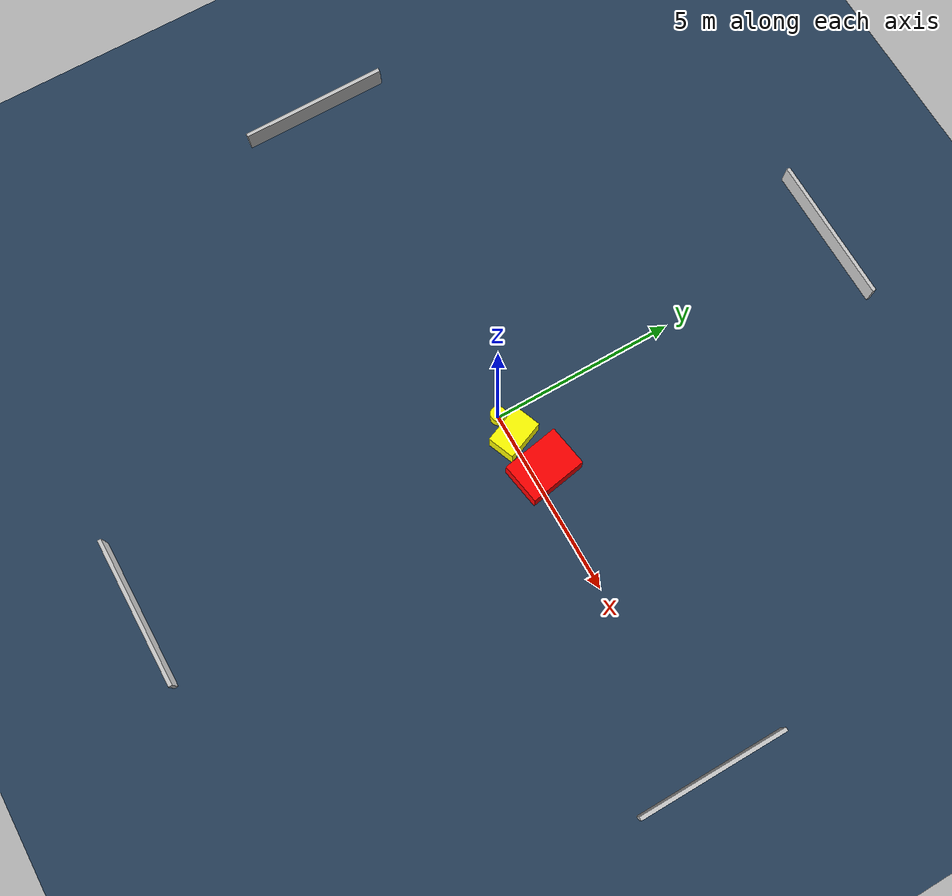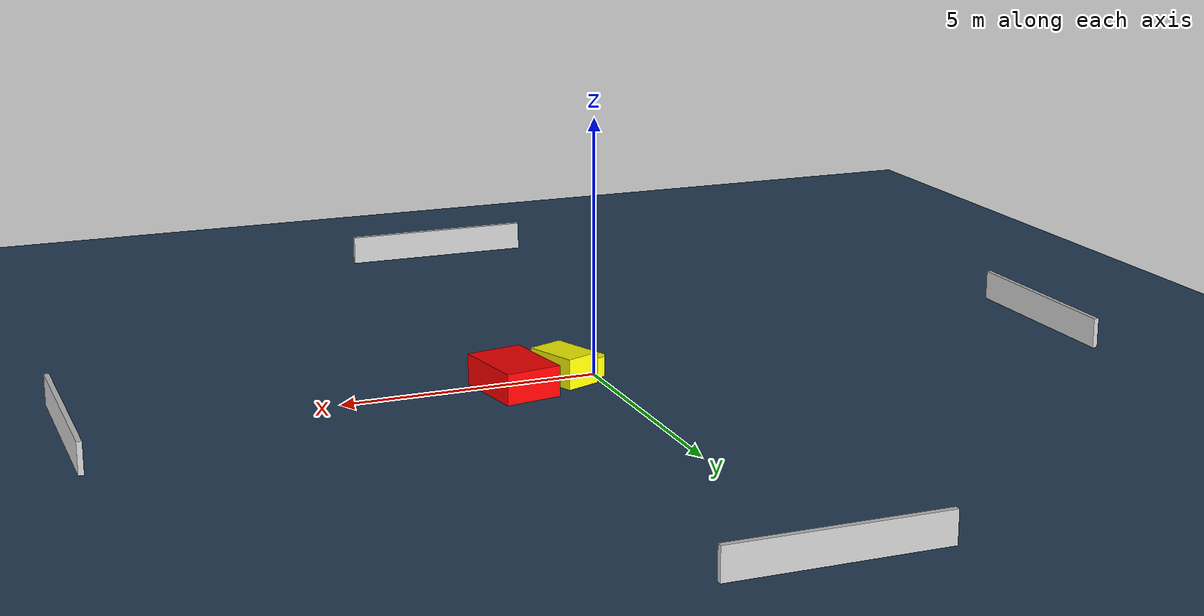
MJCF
<?xml version="1.0" ?>
<mujoco model="generated_environment">
  <option timestep="0.01" integrator="RK4" cone="elliptic"/>
  <default>
    <geom density="1"/>
  </default>
  <asset>
    <texture builtin="gradient" height="3072" name="skybox" rgb1="0.3 0.5 0.7" rgb2="0 0 0" type="skybox" width="512"/>
    <texture builtin="checker" height="300" name="groundplane" rgb1="0.2 0.3 0.4" rgb2="0.1 0.2 0.3" type="2d" width="300"/>
    <material name="groundplane" reflectance="0.2" texrepeat="5 5" texture="groundplane"/>
  </asset>
  <worldbody>
    <light dir="0 0 -1" directional="true" pos="0 0 1.5"/>
    <geom condim="3" friction="0.5 0.005 0.001" material="groundplane" name="floor" pos="0 0 0" size="0 0 0.05" type="plane"/>
    <body name="walls">
      <geom name="wall_1" condim="4" pos="-10.0 0.0 0.3" rgba="0.800000011920929 0.800000011920929 0.800000011920929 1.0" size="0.05 2.0 0.3" type="box"/>
      <geom name="wall_2" condim="4" pos="10.0 0.0 0.3" rgba="0.800000011920929 0.800000011920929 0.800000011920929 1.0" size="0.05 2.0 0.3" type="box"/>
      <geom name="wall_3" condim="4" pos="0.0 -10.0 0.3" rgba="0.800000011920929 0.800000011920929 0.800000011920929 1.0" size="2.0 0.05 0.3" type="box"/>
      <geom name="wall_4" condim="4" pos="0.0 10.0 0.3" rgba="0.800000011920929 0.800000011920929 0.800000011920929 1.0" size="2.0 0.05 0.3" type="box"/>
    </body>
    <body name="robot">
      <joint name="joint_x" type="slide" pos="0 0 0" axis="1 0 0"/>
      <joint name="joint_y" type="slide" pos="0 0 0" axis="0 1 0"/>
      <geom name="robot" type="cylinder" pos="0.0 0.0 0.2" size="0.2 0.2 0.0" mass="5.0" friction="1.0 0.005 0.0001" condim="4" rgba="1.0 1.0 0.0 1.0"/>
    </body>
    <body name="obstacle_1_movable">
      <geom name="obstacle_1_movable" condim="4" pos="0.646155274063148 0.08902059612138884 0.3" euler="0 0 111.88857733867377" friction="0.0 0.005 0.001" rgba="1.0 1.0 0.0 1.0" size="0.5409028179540538 0.3664968125921585 0.3" type="box" mass="0.1"/>
      <joint type="free"/>
    </body>
    <body name="obstacle_2_static">
      <geom name="obstacle_2_static" condim="4" pos="1.7500954443295351 0.31229609380342543 0.3" euler="0 0 279.67265456046533" friction="0.0 0.005 0.001" rgba="1.0 0.0 0.0 1.0" size="0.7727136120575968 0.5555715272581473 0.3" type="box"/>
    </body>
  </worldbody>
  <actuator>
    <motor name="actuator_x" joint="joint_x" gear="1" ctrlrange="-1 1"/>
    <motor name="actuator_y" joint="joint_y" gear="1" ctrlrange="-1 1"/>
  </actuator>
</mujoco>
